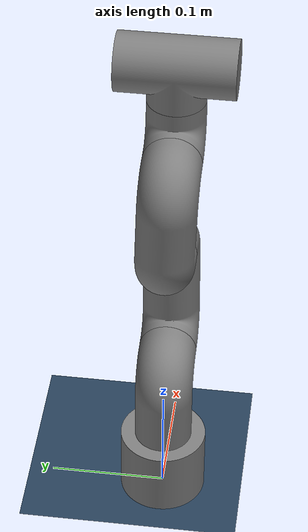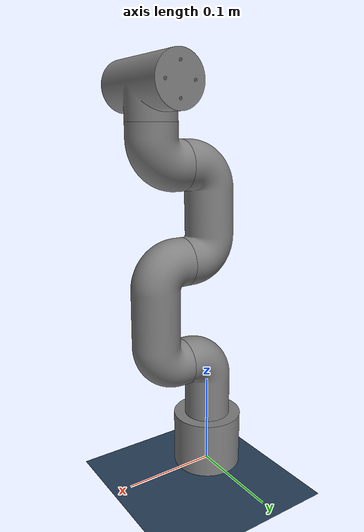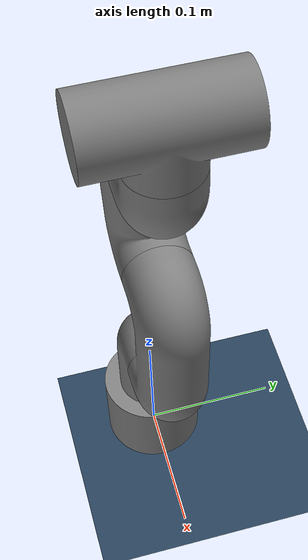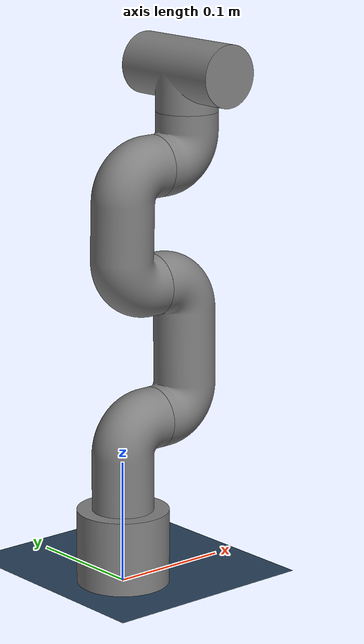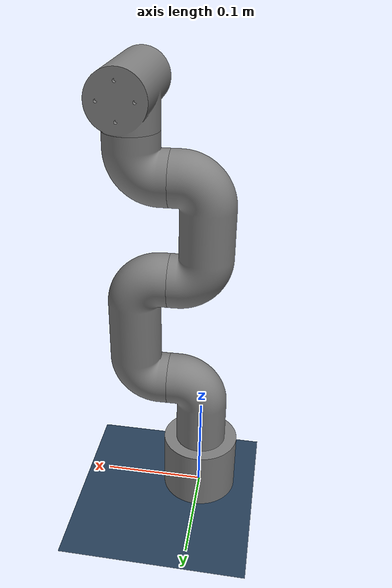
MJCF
<mujoco model="mycobot_pi">
    <compiler angle="radian"/>
    <default>
        <!-- Fusion 360 の座標系を MuJoCo に変換します -->
        <geom type="mesh" xyaxes="1 0 0 0 1 0"/>
    </default>
    <asset>
        <texture name="grid" type="2d" builtin="checker" rgb1=".1 .2 .3" rgb2=".2 .3 .4" width="300" height="300"/>
        <material name="grid" texture="grid" texrepeat="8 8" reflectance=".2"/>
        <mesh name="base" file="stl/base.stl" scale=".001 .001 .001"/>
        <mesh name="link1" file="stl/link1.stl" scale=".001 .001 .001"/>
        <mesh name="link2" file="stl/link2.stl" scale=".001 .001 .001"/>
        <mesh name="link3" file="stl/link3.stl" scale=".001 .001 .001"/>
        <mesh name="link4" file="stl/link4.stl" scale=".001 .001 .001"/>
        <mesh name="link5" file="stl/link5.stl" scale=".001 .001 .001"/>
        <mesh name="hand" file="stl/hand.stl" scale=".001 .001 .001"/>
    </asset>

    <worldbody>
        <geom name="floor" type="plane" pos="0 0 0" size="5 5 0.1" material="grid"/>
        <light name="top" pos="0 0 2" diffuse="1 1 1" specular=".5 .5 .5" attenuation=".1 .1 .1"/>

        <body name="base">
            <geom mesh="base"/>
            <body name="link1">
                <joint name="joint1" pos="0 0 .062" axis="0 0 1" range="-2.88 2.88"/>
                <geom mesh="link1"/>
                <body name="link2">
                    <joint name="joint2" pos=".033 0 .132" axis="1 0 0" range="-2.88 2.88"/>
                    <geom mesh="link2"/>
                    <body name="link3">
                        <joint name="joint3" pos=".033 0 .242" axis="1 0 0" range="-2.88 2.88"/>
                        <geom mesh="link3"/>
                        <body name="link4">
                            <joint name="joint4" pos=".033 0 .338" axis="1 0 0" range="-2.88 2.88"/>
                            <geom mesh="link4"/>
                            <body name="link5">
                                <joint name="joint5" pos=".066 0 .378" axis="0 0 1" range="-2.88 2.88"/>
                                <geom mesh="link5"/>
                            </body>
                        </body>
                    </body>
                </body>
            </body>
        </body>
    </worldbody>

    <contact>
        <exclude body1="base" body2="link1"/>
        <exclude body1="link1" body2="link2"/>
        <exclude body1="link2" body2="link3"/>
        <exclude body1="link3" body2="link4"/>
        <exclude body1="link4" body2="link5"/>
    </contact>

    <actuator>
        <position name="joint1" joint="joint1" ctrllimited="true" ctrlrange="-2.88 2.88" kp="20" kv="0.2"/>
        <position name="joint2" joint="joint2" ctrllimited="true" ctrlrange="-2.88 2.88" kp="20" kv="0.2"/>
        <position name="joint3" joint="joint3" ctrllimited="true" ctrlrange="-2.88 2.88" kp="20" kv="0.2"/>
        <position name="joint4" joint="joint4" ctrllimited="true" ctrlrange="-2.88 2.88" kp="10" kv="0.15"/>
        <position name="joint5" joint="joint5" ctrllimited="true" ctrlrange="-2.88 2.88" kp="1" kv="0.1"/>
    </actuator>
</mujoco>
